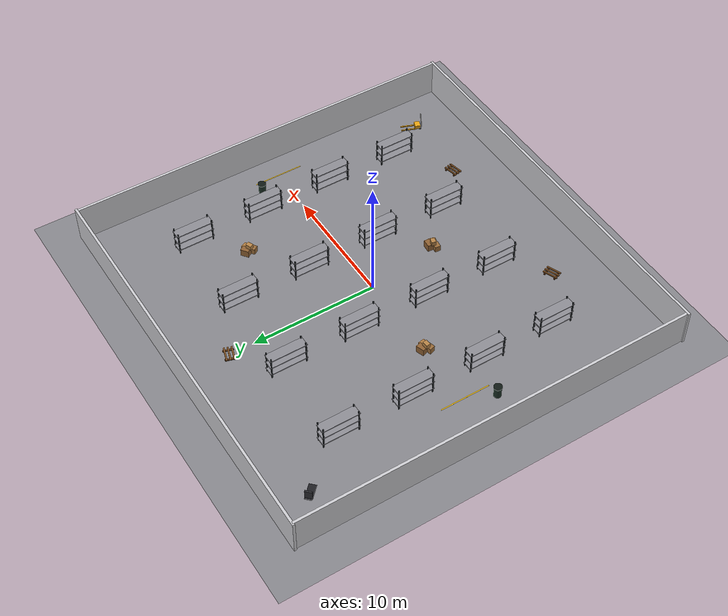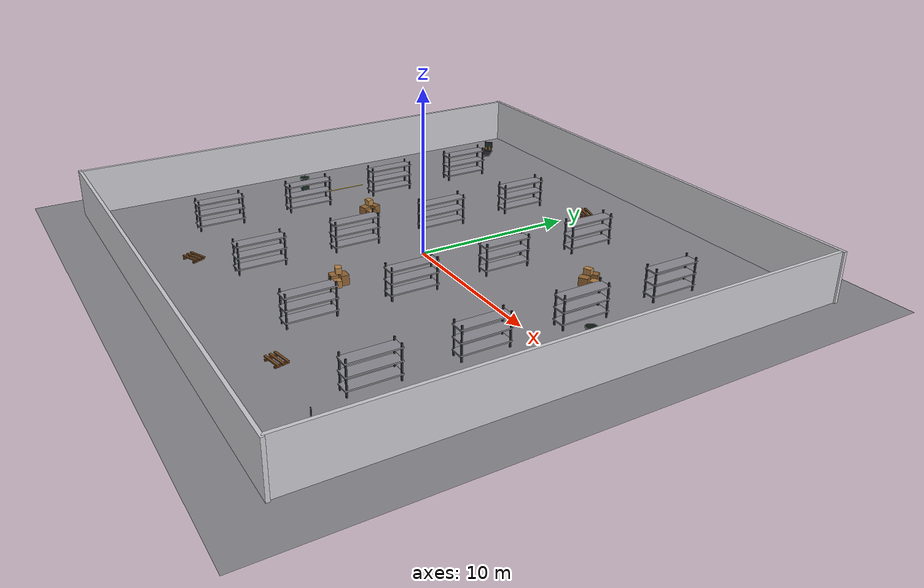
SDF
<?xml version="1.0"?>
<sdf version="1.11">
  <world name="benchmark_warehouse_hard">
    <physics name="1ms" type="ignored"><max_step_size>0.001</max_step_size><real_time_factor>1.0</real_time_factor></physics>
    <plugin filename="gz-sim-physics-system" name="gz::sim::systems::Physics"/>
    <plugin filename="gz-sim-sensors-system" name="gz::sim::systems::Sensors"><render_engine>ogre2</render_engine></plugin>
    <plugin filename="gz-sim-scene-broadcaster-system" name="gz::sim::systems::SceneBroadcaster"/>
    <plugin filename="gz-sim-user-commands-system" name="gz::sim::systems::UserCommands"/>
    <plugin filename="gz-sim-imu-system" name="gz::sim::systems::Imu"/>
    <model name="ground_plane"><static>true</static><link name="link"><collision name="collision"><geometry><plane><normal>0 0 1</normal><size>80 80</size></plane></geometry></collision><visual name="visual"><geometry><plane><normal>0 0 1</normal><size>80 80</size></plane></geometry><material><ambient>0.53 0.53 0.55 1</ambient><diffuse>0.53 0.53 0.55 1</diffuse></material></visual></link></model>
    <light name="sun" type="directional"><cast_shadows>true</cast_shadows><pose>0 0 12 0 0 0</pose><diffuse>0.82 0.82 0.82 1</diffuse><direction>-0.4 0.2 -0.9</direction></light>

    <model name="wall_north"><static>true</static><pose>0 16 1.5 0 0 0</pose><link name="link"><collision name="collision"><geometry><box><size>32.4 0.2 3.0</size></box></geometry></collision><visual name="visual"><geometry><box><size>32.4 0.2 3.0</size></box></geometry><material><ambient>0.80 0.80 0.82 1</ambient><diffuse>0.80 0.80 0.82 1</diffuse></material></visual></link></model>
    <model name="wall_south"><static>true</static><pose>0 -16 1.5 0 0 0</pose><link name="link"><collision name="collision"><geometry><box><size>32.4 0.2 3.0</size></box></geometry></collision><visual name="visual"><geometry><box><size>32.4 0.2 3.0</size></box></geometry><material><ambient>0.80 0.80 0.82 1</ambient><diffuse>0.80 0.80 0.82 1</diffuse></material></visual></link></model>
    <model name="wall_east"><static>true</static><pose>16 0 1.5 0 0 0</pose><link name="link"><collision name="collision"><geometry><box><size>0.2 32.0 3.0</size></box></geometry></collision><visual name="visual"><geometry><box><size>0.2 32.0 3.0</size></box></geometry><material><ambient>0.80 0.80 0.82 1</ambient><diffuse>0.80 0.80 0.82 1</diffuse></material></visual></link></model>
    <model name="wall_west"><static>true</static><pose>-16 0 1.5 0 0 0</pose><link name="link"><collision name="collision"><geometry><box><size>0.2 32.0 3.0</size></box></geometry></collision><visual name="visual"><geometry><box><size>0.2 32.0 3.0</size></box></geometry><material><ambient>0.80 0.80 0.82 1</ambient><diffuse>0.80 0.80 0.82 1</diffuse></material></visual></link></model>

    <include><name>shelf_hard_01</name><uri>model://warehouse_shelf</uri><pose>-10 9 0 0 0 1.5708</pose></include>
    <include><name>shelf_hard_02</name><uri>model://warehouse_shelf</uri><pose>-10 3 0 0 0 1.5708</pose></include>
    <include><name>shelf_hard_03</name><uri>model://warehouse_shelf</uri><pose>-10 -3 0 0 0 1.5708</pose></include>
    <include><name>shelf_hard_04</name><uri>model://warehouse_shelf</uri><pose>-10 -9 0 0 0 1.5708</pose></include>
    <include><name>shelf_hard_05</name><uri>model://warehouse_shelf</uri><pose>-3 9 0 0 0 1.5708</pose></include>
    <include><name>shelf_hard_06</name><uri>model://warehouse_shelf</uri><pose>-3 3 0 0 0 1.5708</pose></include>
    <include><name>shelf_hard_07</name><uri>model://warehouse_shelf</uri><pose>-3 -3 0 0 0 1.5708</pose></include>
    <include><name>shelf_hard_08</name><uri>model://warehouse_shelf</uri><pose>-3 -9 0 0 0 1.5708</pose></include>
    <include><name>shelf_hard_09</name><uri>model://warehouse_shelf</uri><pose>4 9 0 0 0 1.5708</pose></include>
    <include><name>shelf_hard_10</name><uri>model://warehouse_shelf</uri><pose>4 3 0 0 0 1.5708</pose></include>
    <include><name>shelf_hard_11</name><uri>model://warehouse_shelf</uri><pose>4 -3 0 0 0 1.5708</pose></include>
    <include><name>shelf_hard_12</name><uri>model://warehouse_shelf</uri><pose>4 -9 0 0 0 1.5708</pose></include>
    <include><name>shelf_hard_13</name><uri>model://warehouse_shelf</uri><pose>11 9 0 0 0 1.5708</pose></include>
    <include><name>shelf_hard_14</name><uri>model://warehouse_shelf</uri><pose>11 3 0 0 0 1.5708</pose></include>
    <include><name>shelf_hard_15</name><uri>model://warehouse_shelf</uri><pose>11 -3 0 0 0 1.5708</pose></include>
    <include><name>shelf_hard_16</name><uri>model://warehouse_shelf</uri><pose>11 -9 0 0 0 1.5708</pose></include>
    <include><name>pallet_hard_01</name><uri>model://warehouse_pallet</uri><pose>-6 -12 0 0 0 0.4</pose></include>
    <include><name>pallet_hard_02</name><uri>model://warehouse_pallet</uri><pose>0 12 0 0 0 -0.3</pose></include>
    <include><name>pallet_hard_03</name><uri>model://warehouse_pallet</uri><pose>7 -12 0 0 0 0.2</pose></include>
    <include><name>box_cluster_hard_01</name><uri>model://warehouse_box_cluster</uri><pose>-7 0 0 0 0 0.2</pose></include>
    <include><name>box_cluster_hard_02</name><uri>model://warehouse_box_cluster</uri><pose>1 -6 0 0 0 -0.2</pose></include>
    <include><name>box_cluster_hard_03</name><uri>model://warehouse_box_cluster</uri><pose>8 6 0 0 0 0.5</pose></include>
    <include><name>trash_bin_hard_01</name><uri>model://warehouse_trash_bin</uri><pose>-13 -2 0 0 0 0</pose></include>
    <include><name>trash_bin_hard_02</name><uri>model://warehouse_trash_bin</uri><pose>13 2 0 0 0 0</pose></include>
    <include><name>pallet_jack_hard_01</name><uri>model://warehouse_pallet_jack</uri><pose>13 -12 0 0 0 1.2</pose></include>
    <include><name>charging_dock_hard_01</name><uri>model://charging_dock</uri><pose>-13 13 0 0 0 -0.8</pose></include>
    <include><name>floor_marking_hard_01</name><uri>model://warehouse_floor_marking</uri><pose>-12 0 0 0 0 1.5708</pose></include>
    <include><name>floor_marking_hard_02</name><uri>model://warehouse_floor_marking</uri><pose>14 0 0 0 0 1.5708</pose></include>
  </world>
</sdf>

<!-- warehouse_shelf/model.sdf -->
<sdf version="1.11">
  <model name="warehouse_shelf">
    <static>true</static>
    <link name="link">
      <collision name="collision">
        <geometry><box><size>3.0 0.8 2.0</size></box></geometry>
        <pose>0 0 1.0 0 0 0</pose>
      </collision>
      <visual name="upright_left"><pose>-1.4 -0.35 1.0 0 0 0</pose><geometry><box><size>0.08 0.08 2.0</size></box></geometry><material><ambient>0.18 0.20 0.22 1</ambient><diffuse>0.18 0.20 0.22 1</diffuse></material></visual>
      <visual name="upright_right"><pose>1.4 -0.35 1.0 0 0 0</pose><geometry><box><size>0.08 0.08 2.0</size></box></geometry><material><ambient>0.18 0.20 0.22 1</ambient><diffuse>0.18 0.20 0.22 1</diffuse></material></visual>
      <visual name="upright_back_left"><pose>-1.4 0.35 1.0 0 0 0</pose><geometry><box><size>0.08 0.08 2.0</size></box></geometry><material><ambient>0.18 0.20 0.22 1</ambient><diffuse>0.18 0.20 0.22 1</diffuse></material></visual>
      <visual name="upright_back_right"><pose>1.4 0.35 1.0 0 0 0</pose><geometry><box><size>0.08 0.08 2.0</size></box></geometry><material><ambient>0.18 0.20 0.22 1</ambient><diffuse>0.18 0.20 0.22 1</diffuse></material></visual>
      <visual name="shelf_bottom"><pose>0 0 0.35 0 0 0</pose><geometry><box><size>3.0 0.8 0.08</size></box></geometry><material><ambient>0.55 0.55 0.58 1</ambient><diffuse>0.55 0.55 0.58 1</diffuse></material></visual>
      <visual name="shelf_middle"><pose>0 0 1.05 0 0 0</pose><geometry><box><size>3.0 0.8 0.08</size></box></geometry><material><ambient>0.55 0.55 0.58 1</ambient><diffuse>0.55 0.55 0.58 1</diffuse></material></visual>
      <visual name="shelf_top"><pose>0 0 1.75 0 0 0</pose><geometry><box><size>3.0 0.8 0.08</size></box></geometry><material><ambient>0.55 0.55 0.58 1</ambient><diffuse>0.55 0.55 0.58 1</diffuse></material></visual>
    </link>
  </model>
</sdf>

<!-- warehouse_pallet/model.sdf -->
<sdf version="1.11">
  <model name="warehouse_pallet">
    <static>true</static>
    <link name="link">
      <collision name="collision"><pose>0 0 0.09 0 0 0</pose><geometry><box><size>1.2 0.8 0.18</size></box></geometry></collision>
      <visual name="deck_front"><pose>0 -0.28 0.18 0 0 0</pose><geometry><box><size>1.2 0.12 0.08</size></box></geometry><material><ambient>0.50 0.32 0.14 1</ambient><diffuse>0.50 0.32 0.14 1</diffuse></material></visual>
      <visual name="deck_mid"><pose>0 0 0.18 0 0 0</pose><geometry><box><size>1.2 0.12 0.08</size></box></geometry><material><ambient>0.50 0.32 0.14 1</ambient><diffuse>0.50 0.32 0.14 1</diffuse></material></visual>
      <visual name="deck_back"><pose>0 0.28 0.18 0 0 0</pose><geometry><box><size>1.2 0.12 0.08</size></box></geometry><material><ambient>0.50 0.32 0.14 1</ambient><diffuse>0.50 0.32 0.14 1</diffuse></material></visual>
      <visual name="runner_left"><pose>-0.42 0 0.06 0 0 0</pose><geometry><box><size>0.12 0.8 0.10</size></box></geometry><material><ambient>0.42 0.24 0.10 1</ambient><diffuse>0.42 0.24 0.10 1</diffuse></material></visual>
      <visual name="runner_right"><pose>0.42 0 0.06 0 0 0</pose><geometry><box><size>0.12 0.8 0.10</size></box></geometry><material><ambient>0.42 0.24 0.10 1</ambient><diffuse>0.42 0.24 0.10 1</diffuse></material></visual>
    </link>
  </model>
</sdf>

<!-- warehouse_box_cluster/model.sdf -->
<sdf version="1.11">
  <model name="warehouse_box_cluster">
    <static>true</static>
    <link name="link">
      <collision name="collision"><pose>0 0 0.35 0 0 0</pose><geometry><box><size>1.2 1.0 0.7</size></box></geometry></collision>
      <visual name="box_a"><pose>-0.25 -0.20 0.25 0 0 0.08</pose><geometry><box><size>0.55 0.45 0.50</size></box></geometry><material><ambient>0.60 0.42 0.22 1</ambient><diffuse>0.60 0.42 0.22 1</diffuse></material></visual>
      <visual name="box_b"><pose>0.35 -0.15 0.20 0 0 -0.04</pose><geometry><box><size>0.45 0.50 0.40</size></box></geometry><material><ambient>0.68 0.48 0.25 1</ambient><diffuse>0.68 0.48 0.25 1</diffuse></material></visual>
      <visual name="box_c"><pose>0.05 0.30 0.30 0 0 0.12</pose><geometry><box><size>0.65 0.45 0.60</size></box></geometry><material><ambient>0.56 0.38 0.20 1</ambient><diffuse>0.56 0.38 0.20 1</diffuse></material></visual>
      <visual name="box_d"><pose>-0.15 0.05 0.78 0 0 -0.10</pose><geometry><box><size>0.45 0.35 0.35</size></box></geometry><material><ambient>0.72 0.52 0.28 1</ambient><diffuse>0.72 0.52 0.28 1</diffuse></material></visual>
    </link>
  </model>
</sdf>

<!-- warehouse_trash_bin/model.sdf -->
<sdf version="1.11">
  <model name="warehouse_trash_bin">
    <static>true</static>
    <link name="link">
      <collision name="collision"><pose>0 0 0.45 0 0 0</pose><geometry><cylinder><radius>0.28</radius><length>0.9</length></cylinder></geometry></collision>
      <visual name="body"><pose>0 0 0.45 0 0 0</pose><geometry><cylinder><radius>0.28</radius><length>0.9</length></cylinder></geometry><material><ambient>0.10 0.18 0.14 1</ambient><diffuse>0.10 0.18 0.14 1</diffuse></material></visual>
      <visual name="lid"><pose>0 0 0.93 0 0 0</pose><geometry><cylinder><radius>0.32</radius><length>0.06</length></cylinder></geometry><material><ambient>0.06 0.10 0.08 1</ambient><diffuse>0.06 0.10 0.08 1</diffuse></material></visual>
    </link>
  </model>
</sdf>

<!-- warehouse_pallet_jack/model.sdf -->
<sdf version="1.11">
  <model name="warehouse_pallet_jack">
    <static>true</static>
    <link name="link">
      <collision name="collision"><pose>0 0 0.25 0 0 0</pose><geometry><box><size>1.6 0.7 0.5</size></box></geometry></collision>
      <visual name="fork_left"><pose>0.25 -0.22 0.08 0 0 0</pose><geometry><box><size>1.3 0.08 0.08</size></box></geometry><material><ambient>0.92 0.65 0.08 1</ambient><diffuse>0.92 0.65 0.08 1</diffuse></material></visual>
      <visual name="fork_right"><pose>0.25 0.22 0.08 0 0 0</pose><geometry><box><size>1.3 0.08 0.08</size></box></geometry><material><ambient>0.92 0.65 0.08 1</ambient><diffuse>0.92 0.65 0.08 1</diffuse></material></visual>
      <visual name="body"><pose>-0.45 0 0.25 0 0 0</pose><geometry><box><size>0.45 0.55 0.30</size></box></geometry><material><ambient>0.92 0.65 0.08 1</ambient><diffuse>0.92 0.65 0.08 1</diffuse></material></visual>
      <visual name="handle"><pose>-0.75 0 0.75 0.45 0 0</pose><geometry><cylinder><radius>0.035</radius><length>1.1</length></cylinder></geometry><material><ambient>0.08 0.08 0.08 1</ambient><diffuse>0.08 0.08 0.08 1</diffuse></material></visual>
      <visual name="wheel_left"><pose>-0.65 -0.25 0.08 1.5708 0 0</pose><geometry><cylinder><radius>0.09</radius><length>0.06</length></cylinder></geometry><material><ambient>0.03 0.03 0.03 1</ambient><diffuse>0.03 0.03 0.03 1</diffuse></material></visual>
      <visual name="wheel_right"><pose>-0.65 0.25 0.08 1.5708 0 0</pose><geometry><cylinder><radius>0.09</radius><length>0.06</length></cylinder></geometry><material><ambient>0.03 0.03 0.03 1</ambient><diffuse>0.03 0.03 0.03 1</diffuse></material></visual>
    </link>
  </model>
</sdf>

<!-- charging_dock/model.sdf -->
<sdf version="1.11">
  <model name="charging_dock">
    <static>true</static>
    <link name="link">
      <collision name="collision"><pose>0 0 0.25 0 0 0</pose><geometry><box><size>0.9 0.25 0.5</size></box></geometry></collision>
      <visual name="base"><pose>0 0 0.12 0 0 0</pose><geometry><box><size>1.2 0.55 0.08</size></box></geometry><material><ambient>0.12 0.12 0.14 1</ambient><diffuse>0.12 0.12 0.14 1</diffuse></material></visual>
      <visual name="back_plate"><pose>-0.45 0 0.45 0 0 0</pose><geometry><box><size>0.12 0.55 0.8</size></box></geometry><material><ambient>0.18 0.18 0.20 1</ambient><diffuse>0.18 0.18 0.20 1</diffuse></material></visual>
      <visual name="contact_left"><pose>-0.37 -0.14 0.38 0 0 0</pose><geometry><box><size>0.025 0.09 0.20</size></box></geometry><material><ambient>0.95 0.75 0.20 1</ambient><diffuse>0.95 0.75 0.20 1</diffuse></material></visual>
      <visual name="contact_right"><pose>-0.37 0.14 0.38 0 0 0</pose><geometry><box><size>0.025 0.09 0.20</size></box></geometry><material><ambient>0.95 0.75 0.20 1</ambient><diffuse>0.95 0.75 0.20 1</diffuse></material></visual>
      <visual name="status_light"><pose>-0.36 0 0.68 0 0 0</pose><geometry><sphere><radius>0.045</radius></sphere></geometry><material><ambient>0.0 0.8 0.2 1</ambient><diffuse>0.0 0.8 0.2 1</diffuse><emissive>0.0 0.4 0.1 1</emissive></material></visual>
    </link>
  </model>
</sdf>

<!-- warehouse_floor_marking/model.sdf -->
<sdf version="1.11">
  <model name="warehouse_floor_marking">
    <static>true</static>
    <link name="link">
      <visual name="strip"><pose>0 0 0.004 0 0 0</pose><geometry><box><size>4.0 0.08 0.004</size></box></geometry><material><ambient>1.0 0.78 0.05 1</ambient><diffuse>1.0 0.78 0.05 1</diffuse><emissive>0.12 0.09 0.0 1</emissive></material></visual>
    </link>
  </model>
</sdf>
